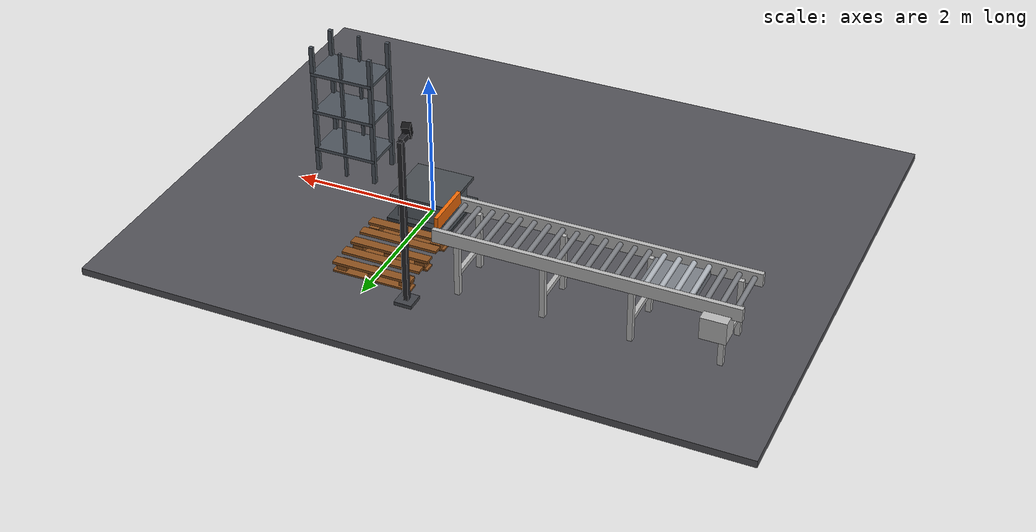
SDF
<?xml version='1.0' encoding='utf-8'?>
<sdf version="1.8">
  <world name="ahead_workcell_v4_1_physical_stopper">
    <plugin filename="ignition-gazebo-physics-system" name="ignition::gazebo::systems::Physics" />
    <plugin filename="ignition-gazebo-user-commands-system" name="ignition::gazebo::systems::UserCommands" />
    <plugin filename="ignition-gazebo-scene-broadcaster-system" name="ignition::gazebo::systems::SceneBroadcaster" />
    <plugin filename="ignition-gazebo-sensors-system" name="ignition::gazebo::systems::Sensors">
      <render_engine>ogre2</render_engine>
    </plugin>
    <gravity>0 0 -9.80665</gravity>
    <physics name="default_physics" type="ignored">
      <max_step_size>0.001</max_step_size>
      <real_time_factor>1.0</real_time_factor>
    </physics>
    <light type="directional" name="sun">
      <pose>0 0 8 0 0 0</pose>
      <diffuse>0.8 0.8 0.8 1</diffuse>
      <direction>-0.4 0.3 -1</direction>
    </light>
    <model name="floor">
      <static>true</static>
      <link name="floor_link">
        <collision name="collision">
          <pose>-1.0 -0.5 -0.05 0 0 0</pose>
          <geometry>
            <box>
              <size>9.0 7.0 0.10</size>
            </box>
          </geometry>
        </collision>
        <visual name="visual">
          <pose>-1.0 -0.5 -0.05 0 0 0</pose>
          <geometry>
            <box>
              <size>9.0 7.0 0.10</size>
            </box>
          </geometry>
          <material>
            <ambient>0.22 0.22 0.23 1</ambient>
            <diffuse>0.32 0.32 0.34 1</diffuse>
          </material>
        </visual>
      </link>
    </model>
    <model name="conveyor_main">
      <static>false</static>
      <link name="conveyor_link">
        <inertial>
          <mass>100.0</mass>
          <inertia>
            <ixx>20.0</ixx>
            <iyy>150.0</iyy>
            <izz>150.0</izz>
            <ixy>0</ixy>
            <ixz>0</ixz>
            <iyz>0</iyz>
          </inertia>
        </inertial>
        <collision name="collision">
          <pose>-2.80 1.20 0.75 0 0 0</pose>
          <geometry>
            <box>
              <size>3.90 0.80 0.20</size>
            </box>
          </geometry>
          <surface>
            <friction>
              <ode>
                <mu>0.7</mu>
                <mu2>150</mu2>
                <fdir1>0 1 0</fdir1>
              </ode>
            </friction>
          </surface>
        </collision>
        <visual name="rail_left">
          <pose>-2.80 0.82 0.84 0 0 0</pose>
          <geometry>
            <box>
              <size>4.00 0.065 0.18</size>
            </box>
          </geometry>
        </visual>
        <visual name="rail_right">
          <pose>-2.80 1.58 0.84 0 0 0</pose>
          <geometry>
            <box>
              <size>4.00 0.065 0.18</size>
            </box>
          </geometry>
        </visual>
        <visual name="leg_l_0">
          <pose>-4.55 0.88 0.40 0 0 0</pose>
          <geometry>
            <box>
              <size>0.07 0.07 0.80</size>
            </box>
          </geometry>
        </visual>
        <visual name="leg_r_0">
          <pose>-4.55 1.52 0.40 0 0 0</pose>
          <geometry>
            <box>
              <size>0.07 0.07 0.80</size>
            </box>
          </geometry>
        </visual>
        <visual name="crossbar_0">
          <pose>-4.55 1.20 0.30 0 0 0</pose>
          <geometry>
            <box>
              <size>0.06 0.68 0.06</size>
            </box>
          </geometry>
        </visual>
        <visual name="leg_l_1">
          <pose>-3.4 0.88 0.40 0 0 0</pose>
          <geometry>
            <box>
              <size>0.07 0.07 0.80</size>
            </box>
          </geometry>
        </visual>
        <visual name="leg_r_1">
          <pose>-3.4 1.52 0.40 0 0 0</pose>
          <geometry>
            <box>
              <size>0.07 0.07 0.80</size>
            </box>
          </geometry>
        </visual>
        <visual name="crossbar_1">
          <pose>-3.4 1.20 0.30 0 0 0</pose>
          <geometry>
            <box>
              <size>0.06 0.68 0.06</size>
            </box>
          </geometry>
        </visual>
        <visual name="leg_l_2">
          <pose>-2.25 0.88 0.40 0 0 0</pose>
          <geometry>
            <box>
              <size>0.07 0.07 0.80</size>
            </box>
          </geometry>
        </visual>
        <visual name="leg_r_2">
          <pose>-2.25 1.52 0.40 0 0 0</pose>
          <geometry>
            <box>
              <size>0.07 0.07 0.80</size>
            </box>
          </geometry>
        </visual>
        <visual name="crossbar_2">
          <pose>-2.25 1.20 0.30 0 0 0</pose>
          <geometry>
            <box>
              <size>0.06 0.68 0.06</size>
            </box>
          </geometry>
        </visual>
        <visual name="leg_l_3">
          <pose>-1.1 0.88 0.40 0 0 0</pose>
          <geometry>
            <box>
              <size>0.07 0.07 0.80</size>
            </box>
          </geometry>
        </visual>
        <visual name="leg_r_3">
          <pose>-1.1 1.52 0.40 0 0 0</pose>
          <geometry>
            <box>
              <size>0.07 0.07 0.80</size>
            </box>
          </geometry>
        </visual>
        <visual name="crossbar_3">
          <pose>-1.1 1.20 0.30 0 0 0</pose>
          <geometry>
            <box>
              <size>0.06 0.68 0.06</size>
            </box>
          </geometry>
        </visual>
        <visual name="pick_stopper">
          <pose>-0.82 1.20 0.96 0 0 0</pose>
          <geometry>
            <box>
              <size>0.05 0.66 0.18</size>
            </box>
          </geometry>
          <material>
            <ambient>0.72 0.27 0.02 1</ambient>
            <diffuse>0.95 0.42 0.03 1</diffuse>
          </material>
        </visual>
        <collision name="pick_stopper_collision">
          <pose>-0.82 1.20 0.96 0 0 0</pose>
          <geometry>
            <box>
              <size>0.05 0.66 0.18</size>
            </box>
          </geometry>
          <surface>
            <friction>
              <ode>
                <mu>1.0</mu>
                <mu2>1.0</mu2>
              </ode>
            </friction>
            <contact>
              <ode>
                <kp>1000000</kp>
                <kd>100</kd>
              </ode>
            </contact>
          </surface>
        </collision>
        <visual name="drive_motor">
          <pose>-4.50 1.63 0.63 0 0 0</pose>
          <geometry>
            <box>
              <size>0.34 0.26 0.30</size>
            </box>
          </geometry>
        </visual>
      </link>
      <joint name="conveyor_world_fixed" type="fixed">
        <parent>world</parent>
        <child>conveyor_link</child>
      </joint>
      <link name="roller_00_link">
        <pose>-4.700000 1.200000 0.860000 0 0 0</pose>
        <inertial>
          <mass>1.0</mass>
          <inertia>
            <ixx>0.03883958</ixx>
            <iyy>0.00061250</iyy>
            <izz>0.03883958</izz>
            <ixy>0</ixy>
            <ixz>0</ixz>
            <iyz>0</iyz>
          </inertia>
        </inertial>
        <visual name="roller_00">
          <pose>0 0 0 1.570796326790 0.000000000000 0.000000000000</pose>
          <geometry>
            <cylinder>
              <radius>0.035</radius>
              <length>0.68</length>
            </cylinder>
          </geometry>
          <material>
            <ambient>0.28 0.29 0.31 1</ambient>
            <diffuse>0.47 0.48 0.50 1</diffuse>
          </material>
        </visual>
        <collision name="roller_00_collision">
          <pose>0 0 0 1.570796326790 0.000000000000 0.000000000000</pose>
          <geometry>
            <cylinder>
              <radius>0.035</radius>
              <length>0.68</length>
            </cylinder>
          </geometry>
          <surface>
            <friction>
              <ode>
                <mu>1.20</mu>
                <mu2>1.20</mu2>
              </ode>
            </friction>
          </surface>
        </collision>
      </link>
      <joint name="roller_00_joint" type="revolute">
        <parent>conveyor_link</parent>
        <child>roller_00_link</child>
        <axis>
          <xyz>0 1 0</xyz>
          <dynamics>
            <damping>0.01</damping>
            <friction>0.0</friction>
          </dynamics>
        </axis>
      </joint>
      <plugin filename="libignition-gazebo-joint-controller-system.so" name="gz::sim::systems::JointController">
        <joint_name>roller_00_joint</joint_name>
        <topic>/pac/conveyor/roller_cmd_vel</topic>
        <initial_velocity>0.0</initial_velocity>
      </plugin>
      <link name="roller_01_link">
        <pose>-4.510000 1.200000 0.860000 0 0 0</pose>
        <inertial>
          <mass>1.0</mass>
          <inertia>
            <ixx>0.03883958</ixx>
            <iyy>0.00061250</iyy>
            <izz>0.03883958</izz>
            <ixy>0</ixy>
            <ixz>0</ixz>
            <iyz>0</iyz>
          </inertia>
        </inertial>
        <visual name="roller_01">
          <pose>0 0 0 1.570796326790 0.000000000000 0.000000000000</pose>
          <geometry>
            <cylinder>
              <radius>0.035</radius>
              <length>0.68</length>
            </cylinder>
          </geometry>
          <material>
            <ambient>0.28 0.29 0.31 1</ambient>
            <diffuse>0.47 0.48 0.50 1</diffuse>
          </material>
        </visual>
        <collision name="roller_01_collision">
          <pose>0 0 0 1.570796326790 0.000000000000 0.000000000000</pose>
          <geometry>
            <cylinder>
              <radius>0.035</radius>
              <length>0.68</length>
            </cylinder>
          </geometry>
          <surface>
            <friction>
              <ode>
                <mu>1.20</mu>
                <mu2>1.20</mu2>
              </ode>
            </friction>
          </surface>
        </collision>
      </link>
      <joint name="roller_01_joint" type="revolute">
        <parent>conveyor_link</parent>
        <child>roller_01_link</child>
        <axis>
          <xyz>0 1 0</xyz>
          <dynamics>
            <damping>0.01</damping>
            <friction>0.0</friction>
          </dynamics>
        </axis>
      </joint>
      <plugin filename="libignition-gazebo-joint-controller-system.so" name="gz::sim::systems::JointController">
        <joint_name>roller_01_joint</joint_name>
        <topic>/pac/conveyor/roller_cmd_vel</topic>
        <initial_velocity>0.0</initial_velocity>
      </plugin>
      <link name="roller_02_link">
        <pose>-4.320000 1.200000 0.860000 0 0 0</pose>
        <inertial>
          <mass>1.0</mass>
          <inertia>
            <ixx>0.03883958</ixx>
            <iyy>0.00061250</iyy>
            <izz>0.03883958</izz>
            <ixy>0</ixy>
            <ixz>0</ixz>
            <iyz>0</iyz>
          </inertia>
        </inertial>
        <visual name="roller_02">
          <pose>0 0 0 1.570796326790 0.000000000000 0.000000000000</pose>
          <geometry>
            <cylinder>
              <radius>0.035</radius>
              <length>0.68</length>
            </cylinder>
          </geometry>
          <material>
            <ambient>0.28 0.29 0.31 1</ambient>
            <diffuse>0.47 0.48 0.50 1</diffuse>
          </material>
        </visual>
        <collision name="roller_02_collision">
          <pose>0 0 0 1.570796326790 0.000000000000 0.000000000000</pose>
          <geometry>
            <cylinder>
              <radius>0.035</radius>
              <length>0.68</length>
            </cylinder>
          </geometry>
          <surface>
            <friction>
              <ode>
                <mu>1.20</mu>
                <mu2>1.20</mu2>
              </ode>
            </friction>
          </surface>
        </collision>
      </link>
      <joint name="roller_02_joint" type="revolute">
        <parent>conveyor_link</parent>
        <child>roller_02_link</child>
        <axis>
          <xyz>0 1 0</xyz>
          <dynamics>
            <damping>0.01</damping>
            <friction>0.0</friction>
          </dynamics>
        </axis>
      </joint>
      <plugin filename="libignition-gazebo-joint-controller-system.so" name="gz::sim::systems::JointController">
        <joint_name>roller_02_joint</joint_name>
        <topic>/pac/conveyor/roller_cmd_vel</topic>
        <initial_velocity>0.0</initial_velocity>
      </plugin>
      <link name="roller_03_link">
        <pose>-4.130000 1.200000 0.860000 0 0 0</pose>
        <inertial>
          <mass>1.0</mass>
          <inertia>
            <ixx>0.03883958</ixx>
            <iyy>0.00061250</iyy>
            <izz>0.03883958</izz>
            <ixy>0</ixy>
            <ixz>0</ixz>
            <iyz>0</iyz>
          </inertia>
        </inertial>
        <visual name="roller_03">
          <pose>0 0 0 1.570796326790 0.000000000000 0.000000000000</pose>
          <geometry>
            <cylinder>
              <radius>0.035</radius>
              <length>0.68</length>
            </cylinder>
          </geometry>
          <material>
            <ambient>0.42 0.44 0.46 1</ambient>
            <diffuse>0.67 0.69 0.72 1</diffuse>
          </material>
        </visual>
        <collision name="roller_03_collision">
          <pose>0 0 0 1.570796326790 0.000000000000 0.000000000000</pose>
          <geometry>
            <cylinder>
              <radius>0.035</radius>
              <length>0.68</length>
            </cylinder>
          </geometry>
          <surface>
            <friction>
              <ode>
                <mu>1.20</mu>
                <mu2>1.20</mu2>
              </ode>
            </friction>
          </surface>
        </collision>
      </link>
      <joint name="roller_03_joint" type="revolute">
        <parent>conveyor_link</parent>
        <child>roller_03_link</child>
        <axis>
          <xyz>0 1 0</xyz>
          <dynamics>
            <damping>0.01</damping>
            <friction>0.0</friction>
          </dynamics>
        </axis>
      </joint>
      <plugin filename="libignition-gazebo-joint-controller-system.so" name="gz::sim::systems::JointController">
        <joint_name>roller_03_joint</joint_name>
        <topic>/pac/conveyor/roller_cmd_vel</topic>
        <initial_velocity>0.0</initial_velocity>
      </plugin>
      <link name="roller_04_link">
        <pose>-3.940000 1.200000 0.860000 0 0 0</pose>
        <inertial>
          <mass>1.0</mass>
          <inertia>
            <ixx>0.03883958</ixx>
            <iyy>0.00061250</iyy>
            <izz>0.03883958</izz>
            <ixy>0</ixy>
            <ixz>0</ixz>
            <iyz>0</iyz>
          </inertia>
        </inertial>
        <visual name="roller_04">
          <pose>0 0 0 1.570796326790 0.000000000000 0.000000000000</pose>
          <geometry>
            <cylinder>
              <radius>0.035</radius>
              <length>0.68</length>
            </cylinder>
          </geometry>
          <material>
            <ambient>0.42 0.44 0.46 1</ambient>
            <diffuse>0.67 0.69 0.72 1</diffuse>
          </material>
        </visual>
        <collision name="roller_04_collision">
          <pose>0 0 0 1.570796326790 0.000000000000 0.000000000000</pose>
          <geometry>
            <cylinder>
              <radius>0.035</radius>
              <length>0.68</length>
            </cylinder>
          </geometry>
          <surface>
            <friction>
              <ode>
                <mu>1.20</mu>
                <mu2>1.20</mu2>
              </ode>
            </friction>
          </surface>
        </collision>
      </link>
      <joint name="roller_04_joint" type="revolute">
        <parent>conveyor_link</parent>
        <child>roller_04_link</child>
        <axis>
          <xyz>0 1 0</xyz>
          <dynamics>
            <damping>0.01</damping>
            <friction>0.0</friction>
          </dynamics>
        </axis>
      </joint>
      <plugin filename="libignition-gazebo-joint-controller-system.so" name="gz::sim::systems::JointController">
        <joint_name>roller_04_joint</joint_name>
        <topic>/pac/conveyor/roller_cmd_vel</topic>
        <initial_velocity>0.0</initial_velocity>
      </plugin>
      <link name="roller_05_link">
        <pose>-3.750000 1.200000 0.860000 0 0 0</pose>
        <inertial>
          <mass>1.0</mass>
          <inertia>
            <ixx>0.03883958</ixx>
            <iyy>0.00061250</iyy>
            <izz>0.03883958</izz>
            <ixy>0</ixy>
            <ixz>0</ixz>
            <iyz>0</iyz>
          </inertia>
        </inertial>
        <visual name="roller_05">
          <pose>0 0 0 1.570796326790 0.000000000000 0.000000000000</pose>
          <geometry>
            <cylinder>
              <radius>0.035</radius>
              <length>0.68</length>
            </cylinder>
          </geometry>
          <material>
            <ambient>0.42 0.44 0.46 1</ambient>
            <diffuse>0.67 0.69 0.72 1</diffuse>
          </material>
        </visual>
        <collision name="roller_05_collision">
          <pose>0 0 0 1.570796326790 0.000000000000 0.000000000000</pose>
          <geometry>
            <cylinder>
              <radius>0.035</radius>
              <length>0.68</length>
            </cylinder>
          </geometry>
          <surface>
            <friction>
              <ode>
                <mu>1.20</mu>
                <mu2>1.20</mu2>
              </ode>
            </friction>
          </surface>
        </collision>
      </link>
      <joint name="roller_05_joint" type="revolute">
        <parent>conveyor_link</parent>
        <child>roller_05_link</child>
        <axis>
          <xyz>0 1 0</xyz>
          <dynamics>
            <damping>0.01</damping>
            <friction>0.0</friction>
          </dynamics>
        </axis>
      </joint>
      <plugin filename="libignition-gazebo-joint-controller-system.so" name="gz::sim::systems::JointController">
        <joint_name>roller_05_joint</joint_name>
        <topic>/pac/conveyor/roller_cmd_vel</topic>
        <initial_velocity>0.0</initial_velocity>
      </plugin>
      <link name="roller_06_link">
        <pose>-3.560000 1.200000 0.860000 0 0 0</pose>
        <inertial>
          <mass>1.0</mass>
          <inertia>
            <ixx>0.03883958</ixx>
            <iyy>0.00061250</iyy>
            <izz>0.03883958</izz>
            <ixy>0</ixy>
            <ixz>0</ixz>
            <iyz>0</iyz>
          </inertia>
        </inertial>
        <visual name="roller_06">
          <pose>0 0 0 1.570796326790 0.000000000000 0.000000000000</pose>
          <geometry>
            <cylinder>
              <radius>0.035</radius>
              <length>0.68</length>
            </cylinder>
          </geometry>
          <material>
            <ambient>0.42 0.44 0.46 1</ambient>
            <diffuse>0.67 0.69 0.72 1</diffuse>
          </material>
        </visual>
        <collision name="roller_06_collision">
          <pose>0 0 0 1.570796326790 0.000000000000 0.000000000000</pose>
          <geometry>
            <cylinder>
              <radius>0.035</radius>
              <length>0.68</length>
            </cylinder>
          </geometry>
          <surface>
            <friction>
              <ode>
                <mu>1.20</mu>
                <mu2>1.20</mu2>
              </ode>
            </friction>
          </surface>
        </collision>
      </link>
      <joint name="roller_06_joint" type="revolute">
        <parent>conveyor_link</parent>
        <child>roller_06_link</child>
        <axis>
          <xyz>0 1 0</xyz>
          <dynamics>
            <damping>0.01</damping>
            <friction>0.0</friction>
          </dynamics>
        </axis>
      </joint>
      <plugin filename="libignition-gazebo-joint-controller-system.so" name="gz::sim::systems::JointController">
        <joint_name>roller_06_joint</joint_name>
        <topic>/pac/conveyor/roller_cmd_vel</topic>
        <initial_velocity>0.0</initial_velocity>
      </plugin>
      <link name="roller_07_link">
        <pose>-3.370000 1.200000 0.860000 0 0 0</pose>
        <inertial>
          <mass>1.0</mass>
          <inertia>
            <ixx>0.03883958</ixx>
            <iyy>0.00061250</iyy>
            <izz>0.03883958</izz>
            <ixy>0</ixy>
            <ixz>0</ixz>
            <iyz>0</iyz>
          </inertia>
        </inertial>
        <visual name="roller_07">
          <pose>0 0 0 1.570796326790 0.000000000000 0.000000000000</pose>
          <geometry>
            <cylinder>
              <radius>0.035</radius>
              <length>0.68</length>
            </cylinder>
          </geometry>
          <material>
            <ambient>0.28 0.29 0.31 1</ambient>
            <diffuse>0.47 0.48 0.50 1</diffuse>
          </material>
        </visual>
        <collision name="roller_07_collision">
          <pose>0 0 0 1.570796326790 0.000000000000 0.000000000000</pose>
          <geometry>
            <cylinder>
              <radius>0.035</radius>
              <length>0.68</length>
            </cylinder>
          </geometry>
          <surface>
            <friction>
              <ode>
                <mu>1.20</mu>
                <mu2>1.20</mu2>
              </ode>
            </friction>
          </surface>
        </collision>
      </link>
      <joint name="roller_07_joint" type="revolute">
        <parent>conveyor_link</parent>
        <child>roller_07_link</child>
        <axis>
          <xyz>0 1 0</xyz>
          <dynamics>
            <damping>0.01</damping>
            <friction>0.0</friction>
          </dynamics>
        </axis>
      </joint>
      <plugin filename="libignition-gazebo-joint-controller-system.so" name="gz::sim::systems::JointController">
        <joint_name>roller_07_joint</joint_name>
        <topic>/pac/conveyor/roller_cmd_vel</topic>
        <initial_velocity>0.0</initial_velocity>
      </plugin>
      <link name="roller_08_link">
        <pose>-3.180000 1.200000 0.860000 0 0 0</pose>
        <inertial>
          <mass>1.0</mass>
          <inertia>
            <ixx>0.03883958</ixx>
            <iyy>0.00061250</iyy>
            <izz>0.03883958</izz>
            <ixy>0</ixy>
            <ixz>0</ixz>
            <iyz>0</iyz>
          </inertia>
        </inertial>
        <visual name="roller_08">
          <pose>0 0 0 1.570796326790 0.000000000000 0.000000000000</pose>
          <geometry>
            <cylinder>
              <radius>0.035</radius>
              <length>0.68</length>
            </cylinder>
          </geometry>
          <material>
            <ambient>0.28 0.29 0.31 1</ambient>
            <diffuse>0.47 0.48 0.50 1</diffuse>
          </material>
        </visual>
        <collision name="roller_08_collision">
          <pose>0 0 0 1.570796326790 0.000000000000 0.000000000000</pose>
          <geometry>
            <cylinder>
              <radius>0.035</radius>
              <length>0.68</length>
            </cylinder>
          </geometry>
          <surface>
            <friction>
              <ode>
                <mu>1.20</mu>
                <mu2>1.20</mu2>
              </ode>
            </friction>
          </surface>
        </collision>
      </link>
      <joint name="roller_08_joint" type="revolute">
        <parent>conveyor_link</parent>
        <child>roller_08_link</child>
        <axis>
          <xyz>0 1 0</xyz>
          <dynamics>
            <damping>0.01</damping>
            <friction>0.0</friction>
          </dynamics>
        </axis>
      </joint>
      <plugin filename="libignition-gazebo-joint-controller-system.so" name="gz::sim::systems::JointController">
        <joint_name>roller_08_joint</joint_name>
        <topic>/pac/conveyor/roller_cmd_vel</topic>
        <initial_velocity>0.0</initial_velocity>
      </plugin>
      <link name="roller_09_link">
        <pose>-2.990000 1.200000 0.860000 0 0 0</pose>
        <inertial>
          <mass>1.0</mass>
          <inertia>
            <ixx>0.03883958</ixx>
            <iyy>0.00061250</iyy>
            <izz>0.03883958</izz>
            <ixy>0</ixy>
            <ixz>0</ixz>
            <iyz>0</iyz>
          </inertia>
        </inertial>
        <visual name="roller_09">
          <pose>0 0 0 1.570796326790 0.000000000000 0.000000000000</pose>
          <geometry>
            <cylinder>
              <radius>0.035</radius>
              <length>0.68</length>
            </cylinder>
          </geometry>
          <material>
            <ambient>0.28 0.29 0.31 1</ambient>
            <diffuse>0.47 0.48 0.50 1</diffuse>
          </material>
        </visual>
        <collision name="roller_09_collision">
          <pose>0 0 0 1.570796326790 0.000000000000 0.000000000000</pose>
          <geometry>
            <cylinder>
              <radius>0.035</radius>
              <length>0.68</length>
            </cylinder>
          </geometry>
          <surface>
            <friction>
              <ode>
                <mu>1.20</mu>
                <mu2>1.20</mu2>
              </ode>
            </friction>
          </surface>
        </collision>
      </link>
      <joint name="roller_09_joint" type="revolute">
        <parent>conveyor_link</parent>
        <child>roller_09_link</child>
        <axis>
          <xyz>0 1 0</xyz>
          <dynamics>
            <damping>0.01</damping>
            <friction>0.0</friction>
          </dynamics>
        </axis>
      </joint>
      <plugin filename="libignition-gazebo-joint-controller-system.so" name="gz::sim::systems::JointController">
        <joint_name>roller_09_joint</joint_name>
        <topic>/pac/conveyor/roller_cmd_vel</topic>
        <initial_velocity>0.0</initial_velocity>
      </plugin>
      <link name="roller_10_link">
        <pose>-2.800000 1.200000 0.860000 0 0 0</pose>
        <inertial>
          <mass>1.0</mass>
          <inertia>
            <ixx>0.03883958</ixx>
            <iyy>0.00061250</iyy>
            <izz>0.03883958</izz>
            <ixy>0</ixy>
            <ixz>0</ixz>
            <iyz>0</iyz>
          </inertia>
        </inertial>
        <visual name="roller_10">
          <pose>0 0 0 1.570796326790 0.000000000000 0.000000000000</pose>
          <geometry>
            <cylinder>
              <radius>0.035</radius>
              <length>0.68</length>
            </cylinder>
          </geometry>
          <material>
            <ambient>0.28 0.29 0.31 1</ambient>
            <diffuse>0.47 0.48 0.50 1</diffuse>
          </material>
        </visual>
        <collision name="roller_10_collision">
          <pose>0 0 0 1.570796326790 0.000000000000 0.000000000000</pose>
          <geometry>
            <cylinder>
              <radius>0.035</radius>
              <length>0.68</length>
            </cylinder>
          </geometry>
          <surface>
            <friction>
              <ode>
                <mu>1.20</mu>
                <mu2>1.20</mu2>
              </ode>
            </friction>
          </surface>
        </collision>
      </link>
      <joint name="roller_10_joint" type="revolute">
        <parent>conveyor_link</parent>
        <child>roller_10_link</child>
        <axis>
          <xyz>0 1 0</xyz>
          <dynamics>
            <damping>0.01</damping>
            <friction>0.0</friction>
          </dynamics>
        </axis>
      </joint>
      <plugin filename="libignition-gazebo-joint-controller-system.so" name="gz::sim::systems::JointController">
        <joint_name>roller_10_joint</joint_name>
        <topic>/pac/conveyor/roller_cmd_vel</topic>
        <initial_velocity>0.0</initial_velocity>
      </plugin>
      <link name="roller_11_link">
        <pose>-2.610000 1.200000 0.860000 0 0 0</pose>
        <inertial>
          <mass>1.0</mass>
          <inertia>
            <ixx>0.03883958</ixx>
            <iyy>0.00061250</iyy>
            <izz>0.03883958</izz>
            <ixy>0</ixy>
            <ixz>0</ixz>
            <iyz>0</iyz>
          </inertia>
        </inertial>
        <visual name="roller_11">
          <pose>0 0 0 1.570796326790 0.000000000000 0.000000000000</pose>
          <geometry>
            <cylinder>
              <radius>0.035</radius>
              <length>0.68</length>
            </cylinder>
          </geometry>
          <material>
            <ambient>0.28 0.29 0.31 1</ambient>
            <diffuse>0.47 0.48 0.50 1</diffuse>
          </material>
        </visual>
        <collision name="roller_11_collision">
          <pose>0 0 0 1.570796326790 0.000000000000 0.000000000000</pose>
          <geometry>
            <cylinder>
              <radius>0.035</radius>
              <length>0.68</length>
            </cylinder>
          </geometry>
          <surface>
            <friction>
              <ode>
                <mu>1.20</mu>
                <mu2>1.20</mu2>
              </ode>
            </friction>
          </surface>
        </collision>
      </link>
      <joint name="roller_11_joint" type="revolute">
        <parent>conveyor_link</parent>
        <child>roller_11_link</child>
        <axis>
          <xyz>0 1 0</xyz>
          <dynamics>
            <damping>0.01</damping>
            <friction>0.0</friction>
          </dynamics>
        </axis>
      </joint>
      <plugin filename="libignition-gazebo-joint-controller-system.so" name="gz::sim::systems::JointController">
        <joint_name>roller_11_joint</joint_name>
        <topic>/pac/conveyor/roller_cmd_vel</topic>
        <initial_velocity>0.0</initial_velocity>
      </plugin>
      <link name="roller_12_link">
        <pose>-2.420000 1.200000 0.860000 0 0 0</pose>
        <inertial>
          <mass>1.0</mass>
          <inertia>
            <ixx>0.03883958</ixx>
            <iyy>0.00061250</iyy>
            <izz>0.03883958</izz>
            <ixy>0</ixy>
            <ixz>0</ixz>
            <iyz>0</iyz>
          </inertia>
        </inertial>
        <visual name="roller_12">
          <pose>0 0 0 1.570796326790 0.000000000000 0.000000000000</pose>
          <geometry>
            <cylinder>
              <radius>0.035</radius>
              <length>0.68</length>
            </cylinder>
          </geometry>
          <material>
            <ambient>0.28 0.29 0.31 1</ambient>
            <diffuse>0.47 0.48 0.50 1</diffuse>
          </material>
        </visual>
        <collision name="roller_12_collision">
          <pose>0 0 0 1.570796326790 0.000000000000 0.000000000000</pose>
          <geometry>
            <cylinder>
              <radius>0.035</radius>
              <length>0.68</length>
            </cylinder>
          </geometry>
          <surface>
            <friction>
              <ode>
                <mu>1.20</mu>
                <mu2>1.20</mu2>
              </ode>
            </friction>
          </surface>
        </collision>
      </link>
      <joint name="roller_12_joint" type="revolute">
        <parent>conveyor_link</parent>
        <child>roller_12_link</child>
        <axis>
          <xyz>0 1 0</xyz>
          <dynamics>
            <damping>0.01</damping>
            <friction>0.0</friction>
          </dynamics>
        </axis>
      </joint>
      <plugin filename="libignition-gazebo-joint-controller-system.so" name="gz::sim::systems::JointController">
        <joint_name>roller_12_joint</joint_name>
        <topic>/pac/conveyor/roller_cmd_vel</topic>
        <initial_velocity>0.0</initial_velocity>
      </plugin>
      <link name="roller_13_link">
        <pose>-2.230000 1.200000 0.860000 0 0 0</pose>
        <inertial>
          <mass>1.0</mass>
          <inertia>
            <ixx>0.03883958</ixx>
            <iyy>0.00061250</iyy>
            <izz>0.03883958</izz>
            <ixy>0</ixy>
            <ixz>0</ixz>
            <iyz>0</iyz>
          </inertia>
        </inertial>
        <visual name="roller_13">
          <pose>0 0 0 1.570796326790 0.000000000000 0.000000000000</pose>
          <geometry>
            <cylinder>
              <radius>0.035</radius>
              <length>0.68</length>
            </cylinder>
          </geometry>
          <material>
            <ambient>0.28 0.29 0.31 1</ambient>
            <diffuse>0.47 0.48 0.50 1</diffuse>
          </material>
        </visual>
        <collision name="roller_13_collision">
          <pose>0 0 0 1.570796326790 0.000000000000 0.000000000000</pose>
          <geometry>
            <cylinder>
              <radius>0.035</radius>
              <length>0.68</length>
            </cylinder>
          </geometry>
          <surface>
            <friction>
              <ode>
                <mu>1.20</mu>
                <mu2>1.20</mu2>
              </ode>
            </friction>
          </surface>
        </collision>
      </link>
      <joint name="roller_13_joint" type="revolute">
        <parent>conveyor_link</parent>
        <child>roller_13_link</child>
        <axis>
          <xyz>0 1 0</xyz>
          <dynamics>
            <damping>0.01</damping>
            <friction>0.0</friction>
          </dynamics>
        </axis>
      </joint>
      <plugin filename="libignition-gazebo-joint-controller-system.so" name="gz::sim::systems::JointController">
        <joint_name>roller_13_joint</joint_name>
        <topic>/pac/conveyor/roller_cmd_vel</topic>
        <initial_velocity>0.0</initial_velocity>
      </plugin>
      <link name="roller_14_link">
        <pose>-2.040000 1.200000 0.860000 0 0 0</pose>
        <inertial>
          <mass>1.0</mass>
          <inertia>
            <ixx>0.03883958</ixx>
            <iyy>0.00061250</iyy>
            <izz>0.03883958</izz>
            <ixy>0</ixy>
            <ixz>0</ixz>
            <iyz>0</iyz>
          </inertia>
        </inertial>
        <visual name="roller_14">
          <pose>0 0 0 1.570796326790 0.000000000000 0.000000000000</pose>
          <geometry>
            <cylinder>
              <radius>0.035</radius>
              <length>0.68</length>
            </cylinder>
          </geometry>
          <material>
            <ambient>0.28 0.29 0.31 1</ambient>
            <diffuse>0.47 0.48 0.50 1</diffuse>
          </material>
        </visual>
        <collision name="roller_14_collision">
          <pose>0 0 0 1.570796326790 0.000000000000 0.000000000000</pose>
          <geometry>
            <cylinder>
              <radius>0.035</radius>
              <length>0.68</length>
            </cylinder>
          </geometry>
          <surface>
            <friction>
              <ode>
                <mu>1.20</mu>
                <mu2>1.20</mu2>
              </ode>
            </friction>
          </surface>
        </collision>
      </link>
      <joint name="roller_14_joint" type="revolute">
        <parent>conveyor_link</parent>
        <child>roller_14_link</child>
        <axis>
          <xyz>0 1 0</xyz>
          <dynamics>
            <damping>0.01</damping>
            <friction>0.0</friction>
          </dynamics>
        </axis>
      </joint>
      <plugin filename="libignition-gazebo-joint-controller-system.so" name="gz::sim::systems::JointController">
        <joint_name>roller_14_joint</joint_name>
        <topic>/pac/conveyor/roller_cmd_vel</topic>
        <initial_velocity>0.0</initial_velocity>
      </plugin>
      <link name="roller_15_link">
        <pose>-1.850000 1.200000 0.860000 0 0 0</pose>
        <inertial>
          <mass>1.0</mass>
          <inertia>
            <ixx>0.03883958</ixx>
            <iyy>0.00061250</iyy>
            <izz>0.03883958</izz>
            <ixy>0</ixy>
            <ixz>0</ixz>
            <iyz>0</iyz>
          </inertia>
        </inertial>
        <visual name="roller_15">
          <pose>0 0 0 1.570796326790 0.000000000000 0.000000000000</pose>
          <geometry>
            <cylinder>
              <radius>0.035</radius>
              <length>0.68</length>
            </cylinder>
          </geometry>
          <material>
            <ambient>0.28 0.29 0.31 1</ambient>
            <diffuse>0.47 0.48 0.50 1</diffuse>
          </material>
        </visual>
        <collision name="roller_15_collision">
          <pose>0 0 0 1.570796326790 0.000000000000 0.000000000000</pose>
          <geometry>
            <cylinder>
              <radius>0.035</radius>
              <length>0.68</length>
            </cylinder>
          </geometry>
          <surface>
            <friction>
              <ode>
                <mu>1.20</mu>
                <mu2>1.20</mu2>
              </ode>
            </friction>
          </surface>
        </collision>
      </link>
      <joint name="roller_15_joint" type="revolute">
        <parent>conveyor_link</parent>
        <child>roller_15_link</child>
        <axis>
          <xyz>0 1 0</xyz>
          <dynamics>
            <damping>0.01</damping>
            <friction>0.0</friction>
          </dynamics>
        </axis>
      </joint>
      <plugin filename="libignition-gazebo-joint-controller-system.so" name="gz::sim::systems::JointController">
        <joint_name>roller_15_joint</joint_name>
        <topic>/pac/conveyor/roller_cmd_vel</topic>
        <initial_velocity>0.0</initial_velocity>
      </plugin>
      <link name="roller_16_link">
        <pose>-1.660000 1.200000 0.860000 0 0 0</pose>
        <inertial>
          <mass>1.0</mass>
          <inertia>
            <ixx>0.03883958</ixx>
            <iyy>0.00061250</iyy>
            <izz>0.03883958</izz>
            <ixy>0</ixy>
            <ixz>0</ixz>
            <iyz>0</iyz>
          </inertia>
        </inertial>
        <visual name="roller_16">
          <pose>0 0 0 1.570796326790 0.000000000000 0.000000000000</pose>
          <geometry>
            <cylinder>
              <radius>0.035</radius>
              <length>0.68</length>
            </cylinder>
          </geometry>
          <material>
            <ambient>0.28 0.29 0.31 1</ambient>
            <diffuse>0.47 0.48 0.50 1</diffuse>
          </material>
        </visual>
        <collision name="roller_16_collision">
          <pose>0 0 0 1.570796326790 0.000000000000 0.000000000000</pose>
          <geometry>
            <cylinder>
              <radius>0.035</radius>
              <length>0.68</length>
            </cylinder>
          </geometry>
          <surface>
            <friction>
              <ode>
                <mu>1.20</mu>
                <mu2>1.20</mu2>
              </ode>
            </friction>
          </surface>
        </collision>
      </link>
      <joint name="roller_16_joint" type="revolute">
        <parent>conveyor_link</parent>
        <child>roller_16_link</child>
        <axis>
          <xyz>0 1 0</xyz>
          <dynamics>
            <damping>0.01</damping>
            <friction>0.0</friction>
          </dynamics>
        </axis>
      </joint>
      <plugin filename="libignition-gazebo-joint-controller-system.so" name="gz::sim::systems::JointController">
        <joint_name>roller_16_joint</joint_name>
        <topic>/pac/conveyor/roller_cmd_vel</topic>
        <initial_velocity>0.0</initial_velocity>
      </plugin>
      <link name="roller_17_link">
        <pose>-1.470000 1.200000 0.860000 0 0 0</pose>
        <inertial>
          <mass>1.0</mass>
          <inertia>
            <ixx>0.03883958</ixx>
            <iyy>0.00061250</iyy>
            <izz>0.03883958</izz>
            <ixy>0</ixy>
            <ixz>0</ixz>
            <iyz>0</iyz>
          </inertia>
        </inertial>
        <visual name="roller_17">
          <pose>0 0 0 1.570796326790 0.000000000000 0.000000000000</pose>
          <geometry>
            <cylinder>
              <radius>0.035</radius>
              <length>0.68</length>
            </cylinder>
          </geometry>
          <material>
            <ambient>0.28 0.29 0.31 1</ambient>
            <diffuse>0.47 0.48 0.50 1</diffuse>
          </material>
        </visual>
        <collision name="roller_17_collision">
          <pose>0 0 0 1.570796326790 0.000000000000 0.000000000000</pose>
          <geometry>
            <cylinder>
              <radius>0.035</radius>
              <length>0.68</length>
            </cylinder>
          </geometry>
          <surface>
            <friction>
              <ode>
                <mu>1.20</mu>
                <mu2>1.20</mu2>
              </ode>
            </friction>
          </surface>
        </collision>
      </link>
      <joint name="roller_17_joint" type="revolute">
        <parent>conveyor_link</parent>
        <child>roller_17_link</child>
        <axis>
          <xyz>0 1 0</xyz>
          <dynamics>
            <damping>0.01</damping>
            <friction>0.0</friction>
          </dynamics>
        </axis>
      </joint>
      <plugin filename="libignition-gazebo-joint-controller-system.so" name="gz::sim::systems::JointController">
        <joint_name>roller_17_joint</joint_name>
        <topic>/pac/conveyor/roller_cmd_vel</topic>
        <initial_velocity>0.0</initial_velocity>
      </plugin>
      <link name="roller_18_link">
        <pose>-1.280000 1.200000 0.860000 0 0 0</pose>
        <inertial>
          <mass>1.0</mass>
          <inertia>
            <ixx>0.03883958</ixx>
            <iyy>0.00061250</iyy>
            <izz>0.03883958</izz>
            <ixy>0</ixy>
            <ixz>0</ixz>
            <iyz>0</iyz>
          </inertia>
        </inertial>
        <visual name="roller_18">
          <pose>0 0 0 1.570796326790 0.000000000000 0.000000000000</pose>
          <geometry>
            <cylinder>
              <radius>0.035</radius>
              <length>0.68</length>
            </cylinder>
          </geometry>
          <material>
            <ambient>0.28 0.29 0.31 1</ambient>
            <diffuse>0.47 0.48 0.50 1</diffuse>
          </material>
        </visual>
        <collision name="roller_18_collision">
          <pose>0 0 0 1.570796326790 0.000000000000 0.000000000000</pose>
          <geometry>
            <cylinder>
              <radius>0.035</radius>
              <length>0.68</length>
            </cylinder>
          </geometry>
          <surface>
            <friction>
              <ode>
                <mu>1.20</mu>
                <mu2>1.20</mu2>
              </ode>
            </friction>
          </surface>
        </collision>
      </link>
      <joint name="roller_18_joint" type="revolute">
        <parent>conveyor_link</parent>
        <child>roller_18_link</child>
        <axis>
          <xyz>0 1 0</xyz>
          <dynamics>
            <damping>0.01</damping>
            <friction>0.0</friction>
          </dynamics>
        </axis>
      </joint>
      <plugin filename="libignition-gazebo-joint-controller-system.so" name="gz::sim::systems::JointController">
        <joint_name>roller_18_joint</joint_name>
        <topic>/pac/conveyor/roller_cmd_vel</topic>
        <initial_velocity>0.0</initial_velocity>
      </plugin>
      <link name="roller_19_link">
        <pose>-1.090000 1.200000 0.860000 0 0 0</pose>
        <inertial>
          <mass>1.0</mass>
          <inertia>
            <ixx>0.03883958</ixx>
            <iyy>0.00061250</iyy>
            <izz>0.03883958</izz>
            <ixy>0</ixy>
            <ixz>0</ixz>
            <iyz>0</iyz>
          </inertia>
        </inertial>
        <visual name="roller_19">
          <pose>0 0 0 1.570796326790 0.000000000000 0.000000000000</pose>
          <geometry>
            <cylinder>
              <radius>0.035</radius>
              <length>0.68</length>
            </cylinder>
          </geometry>
          <material>
            <ambient>0.28 0.29 0.31 1</ambient>
            <diffuse>0.47 0.48 0.50 1</diffuse>
          </material>
        </visual>
        <collision name="roller_19_collision">
          <pose>0 0 0 1.570796326790 0.000000000000 0.000000000000</pose>
          <geometry>
            <cylinder>
              <radius>0.035</radius>
              <length>0.68</length>
            </cylinder>
          </geometry>
          <surface>
            <friction>
              <ode>
                <mu>1.20</mu>
                <mu2>1.20</mu2>
              </ode>
            </friction>
          </surface>
        </collision>
      </link>
      <joint name="roller_19_joint" type="revolute">
        <parent>conveyor_link</parent>
        <child>roller_19_link</child>
        <axis>
          <xyz>0 1 0</xyz>
          <dynamics>
            <damping>0.01</damping>
            <friction>0.0</friction>
          </dynamics>
        </axis>
      </joint>
      <plugin filename="libignition-gazebo-joint-controller-system.so" name="gz::sim::systems::JointController">
        <joint_name>roller_19_joint</joint_name>
        <topic>/pac/conveyor/roller_cmd_vel</topic>
        <initial_velocity>0.0</initial_velocity>
      </plugin>
      <link name="roller_20_link">
        <pose>-0.900000 1.200000 0.860000 0 0 0</pose>
        <inertial>
          <mass>1.0</mass>
          <inertia>
            <ixx>0.03883958</ixx>
            <iyy>0.00061250</iyy>
            <izz>0.03883958</izz>
            <ixy>0</ixy>
            <ixz>0</ixz>
            <iyz>0</iyz>
          </inertia>
        </inertial>
        <visual name="roller_20">
          <pose>0 0 0 1.570796326790 0.000000000000 0.000000000000</pose>
          <geometry>
            <cylinder>
              <radius>0.035</radius>
              <length>0.68</length>
            </cylinder>
          </geometry>
          <material>
            <ambient>0.28 0.29 0.31 1</ambient>
            <diffuse>0.47 0.48 0.50 1</diffuse>
          </material>
        </visual>
        <collision name="roller_20_collision">
          <pose>0 0 0 1.570796326790 0.000000000000 0.000000000000</pose>
          <geometry>
            <cylinder>
              <radius>0.035</radius>
              <length>0.68</length>
            </cylinder>
          </geometry>
          <surface>
            <friction>
              <ode>
                <mu>1.20</mu>
                <mu2>1.20</mu2>
              </ode>
            </friction>
          </surface>
        </collision>
      </link>
      <joint name="roller_20_joint" type="revolute">
        <parent>conveyor_link</parent>
        <child>roller_20_link</child>
        <axis>
          <xyz>0 1 0</xyz>
          <dynamics>
            <damping>0.01</damping>
            <friction>0.0</friction>
          </dynamics>
        </axis>
      </joint>
      <plugin filename="libignition-gazebo-joint-controller-system.so" name="gz::sim::systems::JointController">
        <joint_name>roller_20_joint</joint_name>
        <topic>/pac/conveyor/roller_cmd_vel</topic>
        <initial_velocity>0.0</initial_velocity>
      </plugin>
    </model>
    <model name="inline_scale">
      <static>true</static>
      <link name="scale_link">
        <visual name="weighing_frame">
          <pose>-3.80 1.20 0.755 0 0 0</pose>
          <geometry>
            <box>
              <size>0.70 0.70 0.085</size>
            </box>
          </geometry>
          <material>
            <ambient>0.25 0.26 0.28 1</ambient>
            <diffuse>0.48 0.50 0.53 1</diffuse>
          </material>
        </visual>
        <visual name="loadcell_base">
          <pose>-3.80 1.20 0.685 0 0 0</pose>
          <geometry>
            <box>
              <size>0.56 0.54 0.045</size>
            </box>
          </geometry>
        </visual>
      </link>
    </model>
    <model name="hdr50_pedestal">
      <static>true</static>
      <pose>0 0 0 0 0 0</pose>
      <link name="pedestal_link">
        <collision name="base_plate_collision">
          <pose>0 0 0.025 0 0 0</pose>
          <geometry>
            <box>
              <size>0.90 0.90 0.05</size>
            </box>
          </geometry>
        </collision>
        <visual name="base_plate_visual">
          <pose>0 0 0.025 0 0 0</pose>
          <geometry>
            <box>
              <size>0.90 0.90 0.05</size>
            </box>
          </geometry>
          <material>
            <ambient>0.10 0.11 0.12 1</ambient>
            <diffuse>0.20 0.22 0.24 1</diffuse>
          </material>
        </visual>
        <collision name="column_collision">
          <pose>0 0 0.205 0 0 0</pose>
          <geometry>
            <box>
              <size>0.68 0.68 0.31</size>
            </box>
          </geometry>
        </collision>
        <visual name="column_visual">
          <pose>0 0 0.205 0 0 0</pose>
          <geometry>
            <box>
              <size>0.68 0.68 0.31</size>
            </box>
          </geometry>
          <material>
            <ambient>0.18 0.20 0.22 1</ambient>
            <diffuse>0.34 0.37 0.40 1</diffuse>
          </material>
        </visual>
        <collision name="top_plate_collision">
          <pose>0 0 0.375 0 0 0</pose>
          <geometry>
            <box>
              <size>0.82 0.82 0.05</size>
            </box>
          </geometry>
        </collision>
        <visual name="top_plate_visual">
          <pose>0 0 0.375 0 0 0</pose>
          <geometry>
            <box>
              <size>0.82 0.82 0.05</size>
            </box>
          </geometry>
          <material>
            <ambient>0.12 0.13 0.14 1</ambient>
            <diffuse>0.28 0.30 0.32 1</diffuse>
          </material>
        </visual>
      </link>
    </model>
    <model name="pallet_main">
      <static>true</static>
      <pose>0 1.20 0 0 0 0</pose>
      <link name="pallet_link">
        <collision name="bottom_runner_0_collision">
          <pose>0 -0.48 0.0125 0 0 0</pose>
          <geometry>
            <box>
              <size>1.1 0.14 0.025</size>
            </box>
          </geometry>
        </collision>
        <visual name="bottom_runner_0_visual">
          <pose>0 -0.48 0.0125 0 0 0</pose>
          <geometry>
            <box>
              <size>1.1 0.14 0.025</size>
            </box>
          </geometry>
          <material>
            <ambient>0.34 0.20 0.08 1</ambient>
            <diffuse>0.55 0.32 0.12 1</diffuse>
          </material>
        </visual>
        <collision name="bottom_runner_1_collision">
          <pose>0 0.0 0.0125 0 0 0</pose>
          <geometry>
            <box>
              <size>1.1 0.14 0.025</size>
            </box>
          </geometry>
        </collision>
        <visual name="bottom_runner_1_visual">
          <pose>0 0.0 0.0125 0 0 0</pose>
          <geometry>
            <box>
              <size>1.1 0.14 0.025</size>
            </box>
          </geometry>
          <material>
            <ambient>0.34 0.20 0.08 1</ambient>
            <diffuse>0.55 0.32 0.12 1</diffuse>
          </material>
        </visual>
        <collision name="bottom_runner_2_collision">
          <pose>0 0.48 0.0125 0 0 0</pose>
          <geometry>
            <box>
              <size>1.1 0.14 0.025</size>
            </box>
          </geometry>
        </collision>
        <visual name="bottom_runner_2_visual">
          <pose>0 0.48 0.0125 0 0 0</pose>
          <geometry>
            <box>
              <size>1.1 0.14 0.025</size>
            </box>
          </geometry>
          <material>
            <ambient>0.34 0.20 0.08 1</ambient>
            <diffuse>0.55 0.32 0.12 1</diffuse>
          </material>
        </visual>
        <collision name="support_block_0_0_collision">
          <pose>-0.44 -0.44 0.07 0 0 0</pose>
          <geometry>
            <box>
              <size>0.14 0.15 0.09</size>
            </box>
          </geometry>
        </collision>
        <visual name="support_block_0_0_visual">
          <pose>-0.44 -0.44 0.07 0 0 0</pose>
          <geometry>
            <box>
              <size>0.14 0.15 0.09</size>
            </box>
          </geometry>
          <material>
            <ambient>0.34 0.20 0.08 1</ambient>
            <diffuse>0.55 0.32 0.12 1</diffuse>
          </material>
        </visual>
        <collision name="support_block_0_1_collision">
          <pose>-0.44 0.0 0.07 0 0 0</pose>
          <geometry>
            <box>
              <size>0.14 0.15 0.09</size>
            </box>
          </geometry>
        </collision>
        <visual name="support_block_0_1_visual">
          <pose>-0.44 0.0 0.07 0 0 0</pose>
          <geometry>
            <box>
              <size>0.14 0.15 0.09</size>
            </box>
          </geometry>
          <material>
            <ambient>0.34 0.20 0.08 1</ambient>
            <diffuse>0.55 0.32 0.12 1</diffuse>
          </material>
        </visual>
        <collision name="support_block_0_2_collision">
          <pose>-0.44 0.44 0.07 0 0 0</pose>
          <geometry>
            <box>
              <size>0.14 0.15 0.09</size>
            </box>
          </geometry>
        </collision>
        <visual name="support_block_0_2_visual">
          <pose>-0.44 0.44 0.07 0 0 0</pose>
          <geometry>
            <box>
              <size>0.14 0.15 0.09</size>
            </box>
          </geometry>
          <material>
            <ambient>0.34 0.20 0.08 1</ambient>
            <diffuse>0.55 0.32 0.12 1</diffuse>
          </material>
        </visual>
        <collision name="support_block_1_0_collision">
          <pose>0.0 -0.44 0.07 0 0 0</pose>
          <geometry>
            <box>
              <size>0.14 0.15 0.09</size>
            </box>
          </geometry>
        </collision>
        <visual name="support_block_1_0_visual">
          <pose>0.0 -0.44 0.07 0 0 0</pose>
          <geometry>
            <box>
              <size>0.14 0.15 0.09</size>
            </box>
          </geometry>
          <material>
            <ambient>0.34 0.20 0.08 1</ambient>
            <diffuse>0.55 0.32 0.12 1</diffuse>
          </material>
        </visual>
        <collision name="support_block_1_1_collision">
          <pose>0.0 0.0 0.07 0 0 0</pose>
          <geometry>
            <box>
              <size>0.14 0.15 0.09</size>
            </box>
          </geometry>
        </collision>
        <visual name="support_block_1_1_visual">
          <pose>0.0 0.0 0.07 0 0 0</pose>
          <geometry>
            <box>
              <size>0.14 0.15 0.09</size>
            </box>
          </geometry>
          <material>
            <ambient>0.34 0.20 0.08 1</ambient>
            <diffuse>0.55 0.32 0.12 1</diffuse>
          </material>
        </visual>
        <collision name="support_block_1_2_collision">
          <pose>0.0 0.44 0.07 0 0 0</pose>
          <geometry>
            <box>
              <size>0.14 0.15 0.09</size>
            </box>
          </geometry>
        </collision>
        <visual name="support_block_1_2_visual">
          <pose>0.0 0.44 0.07 0 0 0</pose>
          <geometry>
            <box>
              <size>0.14 0.15 0.09</size>
            </box>
          </geometry>
          <material>
            <ambient>0.34 0.20 0.08 1</ambient>
            <diffuse>0.55 0.32 0.12 1</diffuse>
          </material>
        </visual>
        <collision name="support_block_2_0_collision">
          <pose>0.44 -0.44 0.07 0 0 0</pose>
          <geometry>
            <box>
              <size>0.14 0.15 0.09</size>
            </box>
          </geometry>
        </collision>
        <visual name="support_block_2_0_visual">
          <pose>0.44 -0.44 0.07 0 0 0</pose>
          <geometry>
            <box>
              <size>0.14 0.15 0.09</size>
            </box>
          </geometry>
          <material>
            <ambient>0.34 0.20 0.08 1</ambient>
            <diffuse>0.55 0.32 0.12 1</diffuse>
          </material>
        </visual>
        <collision name="support_block_2_1_collision">
          <pose>0.44 0.0 0.07 0 0 0</pose>
          <geometry>
            <box>
              <size>0.14 0.15 0.09</size>
            </box>
          </geometry>
        </collision>
        <visual name="support_block_2_1_visual">
          <pose>0.44 0.0 0.07 0 0 0</pose>
          <geometry>
            <box>
              <size>0.14 0.15 0.09</size>
            </box>
          </geometry>
          <material>
            <ambient>0.34 0.20 0.08 1</ambient>
            <diffuse>0.55 0.32 0.12 1</diffuse>
          </material>
        </visual>
        <collision name="support_block_2_2_collision">
          <pose>0.44 0.44 0.07 0 0 0</pose>
          <geometry>
            <box>
              <size>0.14 0.15 0.09</size>
            </box>
          </geometry>
        </collision>
        <visual name="support_block_2_2_visual">
          <pose>0.44 0.44 0.07 0 0 0</pose>
          <geometry>
            <box>
              <size>0.14 0.15 0.09</size>
            </box>
          </geometry>
          <material>
            <ambient>0.34 0.20 0.08 1</ambient>
            <diffuse>0.55 0.32 0.12 1</diffuse>
          </material>
        </visual>
        <collision name="top_board_0_collision">
          <pose>0 -0.484 0.1325 0 0 0</pose>
          <geometry>
            <box>
              <size>1.1 0.13 0.035</size>
            </box>
          </geometry>
        </collision>
        <visual name="top_board_0_visual">
          <pose>0 -0.484 0.1325 0 0 0</pose>
          <geometry>
            <box>
              <size>1.1 0.13 0.035</size>
            </box>
          </geometry>
          <material>
            <ambient>0.34 0.20 0.08 1</ambient>
            <diffuse>0.55 0.32 0.12 1</diffuse>
          </material>
        </visual>
        <collision name="top_board_1_collision">
          <pose>0 -0.242 0.1325 0 0 0</pose>
          <geometry>
            <box>
              <size>1.1 0.13 0.035</size>
            </box>
          </geometry>
        </collision>
        <visual name="top_board_1_visual">
          <pose>0 -0.242 0.1325 0 0 0</pose>
          <geometry>
            <box>
              <size>1.1 0.13 0.035</size>
            </box>
          </geometry>
          <material>
            <ambient>0.34 0.20 0.08 1</ambient>
            <diffuse>0.55 0.32 0.12 1</diffuse>
          </material>
        </visual>
        <collision name="top_board_2_collision">
          <pose>0 0.0 0.1325 0 0 0</pose>
          <geometry>
            <box>
              <size>1.1 0.13 0.035</size>
            </box>
          </geometry>
        </collision>
        <visual name="top_board_2_visual">
          <pose>0 0.0 0.1325 0 0 0</pose>
          <geometry>
            <box>
              <size>1.1 0.13 0.035</size>
            </box>
          </geometry>
          <material>
            <ambient>0.34 0.20 0.08 1</ambient>
            <diffuse>0.55 0.32 0.12 1</diffuse>
          </material>
        </visual>
        <collision name="top_board_3_collision">
          <pose>0 0.242 0.1325 0 0 0</pose>
          <geometry>
            <box>
              <size>1.1 0.13 0.035</size>
            </box>
          </geometry>
        </collision>
        <visual name="top_board_3_visual">
          <pose>0 0.242 0.1325 0 0 0</pose>
          <geometry>
            <box>
              <size>1.1 0.13 0.035</size>
            </box>
          </geometry>
          <material>
            <ambient>0.34 0.20 0.08 1</ambient>
            <diffuse>0.55 0.32 0.12 1</diffuse>
          </material>
        </visual>
        <collision name="top_board_4_collision">
          <pose>0 0.484 0.1325 0 0 0</pose>
          <geometry>
            <box>
              <size>1.1 0.13 0.035</size>
            </box>
          </geometry>
        </collision>
        <visual name="top_board_4_visual">
          <pose>0 0.484 0.1325 0 0 0</pose>
          <geometry>
            <box>
              <size>1.1 0.13 0.035</size>
            </box>
          </geometry>
          <material>
            <ambient>0.34 0.20 0.08 1</ambient>
            <diffuse>0.55 0.32 0.12 1</diffuse>
          </material>
        </visual>
      </link>
    </model>
    <model name="buffer_rack">
      <static>true</static>
      <pose>1.45 -0.55 0 0 0 0</pose>
      <link name="rack_link">
        <collision name="post_fl_collision">
          <pose>-0.43 -0.26 0.95 0 0 0</pose>
          <geometry>
            <box>
              <size>0.055 0.055 1.90</size>
            </box>
          </geometry>
        </collision>
        <visual name="post_fl_visual">
          <pose>-0.43 -0.26 0.95 0 0 0</pose>
          <geometry>
            <box>
              <size>0.055 0.055 1.90</size>
            </box>
          </geometry>
          <material>
            <ambient>0.15 0.17 0.19 1</ambient>
            <diffuse>0.30 0.33 0.36 1</diffuse>
          </material>
        </visual>
        <collision name="post_fr_collision">
          <pose>0.43 -0.26 0.95 0 0 0</pose>
          <geometry>
            <box>
              <size>0.055 0.055 1.90</size>
            </box>
          </geometry>
        </collision>
        <visual name="post_fr_visual">
          <pose>0.43 -0.26 0.95 0 0 0</pose>
          <geometry>
            <box>
              <size>0.055 0.055 1.90</size>
            </box>
          </geometry>
          <material>
            <ambient>0.15 0.17 0.19 1</ambient>
            <diffuse>0.30 0.33 0.36 1</diffuse>
          </material>
        </visual>
        <collision name="post_bl_collision">
          <pose>-0.43 0.26 0.95 0 0 0</pose>
          <geometry>
            <box>
              <size>0.055 0.055 1.90</size>
            </box>
          </geometry>
        </collision>
        <visual name="post_bl_visual">
          <pose>-0.43 0.26 0.95 0 0 0</pose>
          <geometry>
            <box>
              <size>0.055 0.055 1.90</size>
            </box>
          </geometry>
          <material>
            <ambient>0.15 0.17 0.19 1</ambient>
            <diffuse>0.30 0.33 0.36 1</diffuse>
          </material>
        </visual>
        <collision name="post_br_collision">
          <pose>0.43 0.26 0.95 0 0 0</pose>
          <geometry>
            <box>
              <size>0.055 0.055 1.90</size>
            </box>
          </geometry>
        </collision>
        <visual name="post_br_visual">
          <pose>0.43 0.26 0.95 0 0 0</pose>
          <geometry>
            <box>
              <size>0.055 0.055 1.90</size>
            </box>
          </geometry>
          <material>
            <ambient>0.15 0.17 0.19 1</ambient>
            <diffuse>0.30 0.33 0.36 1</diffuse>
          </material>
        </visual>
        <collision name="divider_front_collision">
          <pose>0 -0.26 0.95 0 0 0</pose>
          <geometry>
            <box>
              <size>0.04 0.04 1.90</size>
            </box>
          </geometry>
        </collision>
        <visual name="divider_front_visual">
          <pose>0 -0.26 0.95 0 0 0</pose>
          <geometry>
            <box>
              <size>0.04 0.04 1.90</size>
            </box>
          </geometry>
          <material>
            <ambient>0.15 0.17 0.19 1</ambient>
            <diffuse>0.30 0.33 0.36 1</diffuse>
          </material>
        </visual>
        <collision name="divider_back_collision">
          <pose>0 0.26 0.95 0 0 0</pose>
          <geometry>
            <box>
              <size>0.04 0.04 1.90</size>
            </box>
          </geometry>
        </collision>
        <visual name="divider_back_visual">
          <pose>0 0.26 0.95 0 0 0</pose>
          <geometry>
            <box>
              <size>0.04 0.04 1.90</size>
            </box>
          </geometry>
          <material>
            <ambient>0.15 0.17 0.19 1</ambient>
            <diffuse>0.30 0.33 0.36 1</diffuse>
          </material>
        </visual>
        <collision name="shelf_0_collision">
          <pose>0 0 0.34 0 0 0</pose>
          <geometry>
            <box>
              <size>0.90 0.58 0.045</size>
            </box>
          </geometry>
        </collision>
        <visual name="shelf_0_visual">
          <pose>0 0 0.34 0 0 0</pose>
          <geometry>
            <box>
              <size>0.90 0.58 0.045</size>
            </box>
          </geometry>
          <material>
            <ambient>0.15 0.17 0.19 1</ambient>
            <diffuse>0.30 0.33 0.36 1</diffuse>
          </material>
        </visual>
        <collision name="shelf_1_collision">
          <pose>0 0 0.92 0 0 0</pose>
          <geometry>
            <box>
              <size>0.90 0.58 0.045</size>
            </box>
          </geometry>
        </collision>
        <visual name="shelf_1_visual">
          <pose>0 0 0.92 0 0 0</pose>
          <geometry>
            <box>
              <size>0.90 0.58 0.045</size>
            </box>
          </geometry>
          <material>
            <ambient>0.15 0.17 0.19 1</ambient>
            <diffuse>0.30 0.33 0.36 1</diffuse>
          </material>
        </visual>
        <collision name="shelf_2_collision">
          <pose>0 0 1.5 0 0 0</pose>
          <geometry>
            <box>
              <size>0.90 0.58 0.045</size>
            </box>
          </geometry>
        </collision>
        <visual name="shelf_2_visual">
          <pose>0 0 1.5 0 0 0</pose>
          <geometry>
            <box>
              <size>0.90 0.58 0.045</size>
            </box>
          </geometry>
          <material>
            <ambient>0.15 0.17 0.19 1</ambient>
            <diffuse>0.30 0.33 0.36 1</diffuse>
          </material>
        </visual>
      </link>
    </model>
    <model name="camera_1_cctv_base">
      <static>true</static>
      <link name="camera_1_link">
        <collision name="pole_base_collision">
          <pose>-0.6 1.95 0.025 0 0 0</pose>
          <geometry>
            <box>
              <size>0.24 0.24 0.05</size>
            </box>
          </geometry>
        </collision>
        <visual name="pole_base">
          <pose>-0.6 1.95 0.025 0 0 0</pose>
          <geometry>
            <box>
              <size>0.24 0.24 0.05</size>
            </box>
          </geometry>
          <material>
            <ambient>0.12 0.12 0.13 1</ambient>
            <diffuse>0.25 0.26 0.28 1</diffuse>
          </material>
        </visual>
        <collision name="camera_pole_collision">
          <pose>-0.6 1.95 1.17 0 0 0</pose>
          <geometry>
            <box>
              <size>0.07 0.07 2.34</size>
            </box>
          </geometry>
        </collision>
        <visual name="camera_pole">
          <pose>-0.6 1.95 1.17 0 0 0</pose>
          <geometry>
            <box>
              <size>0.07 0.07 2.34</size>
            </box>
          </geometry>
          <material>
            <ambient>0.07 0.07 0.08 1</ambient>
            <diffuse>0.15 0.15 0.17 1</diffuse>
          </material>
        </visual>
        <visual name="camera_bracket">
          <pose>-0.60 1.865 2.34 0 0 0</pose>
          <geometry>
            <box>
              <size>0.07 0.17 0.07</size>
            </box>
          </geometry>
          <material>
            <ambient>0.07 0.07 0.08 1</ambient>
            <diffuse>0.15 0.15 0.17 1</diffuse>
          </material>
        </visual>
        <visual name="camera_housing">
          <pose>-0.6 1.78 2.4 0 1.178996 -1.317721</pose>
          <geometry>
            <box>
              <size>0.20 0.11 0.095</size>
            </box>
          </geometry>
          <material>
            <ambient>0.025 0.025 0.03 1</ambient>
            <diffuse>0.07 0.07 0.08 1</diffuse>
          </material>
        </visual>
        <sensor name="cctv_camera_1" type="camera">
          <pose>-0.6 1.78 2.4 0 1.178996 -1.317721</pose>
          <always_on>true</always_on>
          <update_rate>15</update_rate>
          <topic>/pac/top_camera/image</topic>
          <camera>
            <horizontal_fov>1.40</horizontal_fov>
            <image>
              <width>1280</width>
              <height>720</height>
              <format>R8G8B8</format>
            </image>
            <clip>
              <near>0.10</near>
              <far>8.0</far>
            </clip>
          </camera>
        </sensor>
      </link>
    </model>
  </world>
</sdf>
